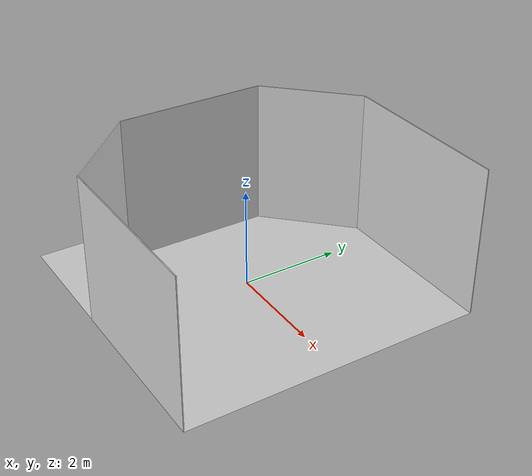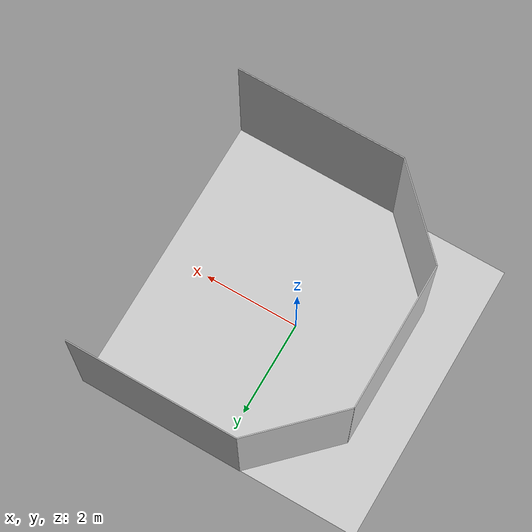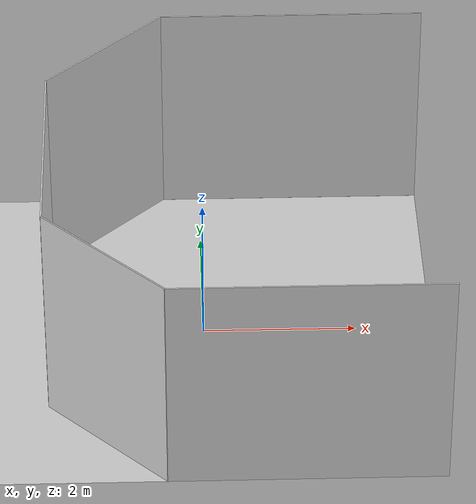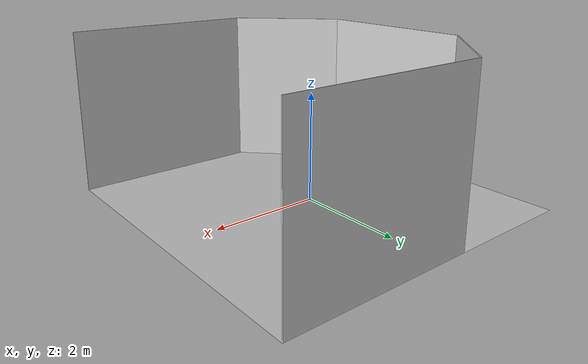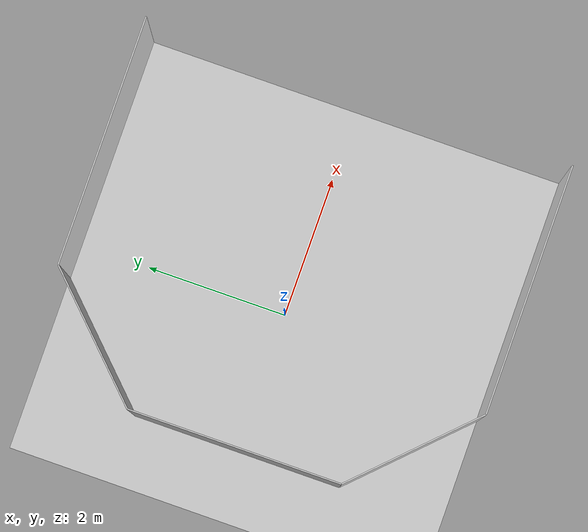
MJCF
<mujoco model="floor_arena">
  <asset>
    <texture builtin="gradient" height="256" rgb1=".9 .9 1." rgb2=".2 .3 .4" type="skybox" width="256"/>
    <texture file="../../textures/light-gray-floor-tile.png" type="2d" name="texplane"/>
    <material name="floorplane" reflectance="0.01" shininess="0.0" specular="0.0" texrepeat="2 2" texture="texplane" texuniform="true"/>
    <texture file="../../textures/light-wood.png" type="cube" name="tex-light-wood"/>
    <texture file="../../textures/dark-wood.png" type="cube" name="tex-dark-wood"/>
    <texture file="../../textures/light-gray-plaster.png" type="2d" name="tex-light-gray-plaster"/>
    <material name="walls_mat" reflectance="0.0" shininess="0.1" specular="0.1" texrepeat="3 3" texture="tex-light-gray-plaster" texuniform="true" />
  </asset>

  <worldbody>
    <geom condim="3" group="1" material="floorplane" name="floor" pos="0 0 0" size="3 3 .125" type="plane"/>
    <geom pos="-1.25 2.25 1.5" quat="0.6532815 0.6532815 0.2705981 0.2705981" size="1.06 1.5 0.01" type="box" conaffinity="0" contype="0" group="1" name="wall_leftcorner_visual" material="walls_mat"/>
    <geom pos="-1.25 -2.25 1.5" quat="0.6532815 0.6532815 -0.2705981 -0.2705981" size="1.06 1.5 0.01" type="box" conaffinity="0" contype="0" group="1" name="wall_rightcorner_visual" material="walls_mat"/>
    <geom pos="1.25 3 1.5" quat="0.7071 0.7071 0 0" size="1.75 1.5 0.01" type="box" conaffinity="0" contype="0" group="1" name="wall_left_visual" material="walls_mat"/>
    <geom pos="1.25 -3 1.5" quat="0.7071 -0.7071 0 0" size="1.75 1.5 0.01" type="box" conaffinity="0" contype="0" group="1" name="wall_right_visual" material="walls_mat"/>
    <geom pos="-2 0 1.5" quat="0.5 0.5 0.5 0.5" size="1.5 1.5 0.01" type="box" conaffinity="0" contype="0" group="1" name="wall_rear_visual" material="walls_mat"/>
    <light pos="1.0 1.0 1.5" dir="-0.2 -0.2 -1" specular="0.3 0.3 0.3" directional="true" castshadow="false"/>
    <camera mode="fixed" name="frontview" pos="1.6 0 1.45" quat="0.56 0.43 0.43 0.56"/>
    <camera mode="fixed" name="birdview" pos="-0.2 0 3.0" quat="0.7071 0 0 0.7071"/>
    <camera mode="fixed" name="agentview" pos="0.5 0 1.35" quat="0.653 0.271 0.271 0.653"/>
    <camera mode="fixed" name="sideview" pos="-0.05651774593317116 1.2761224129427358 1.4879572214102434" quat="0.009905065491771751 0.006877963156909582 0.5912228352893879 0.806418094001364" />
  </worldbody>
</mujoco>
